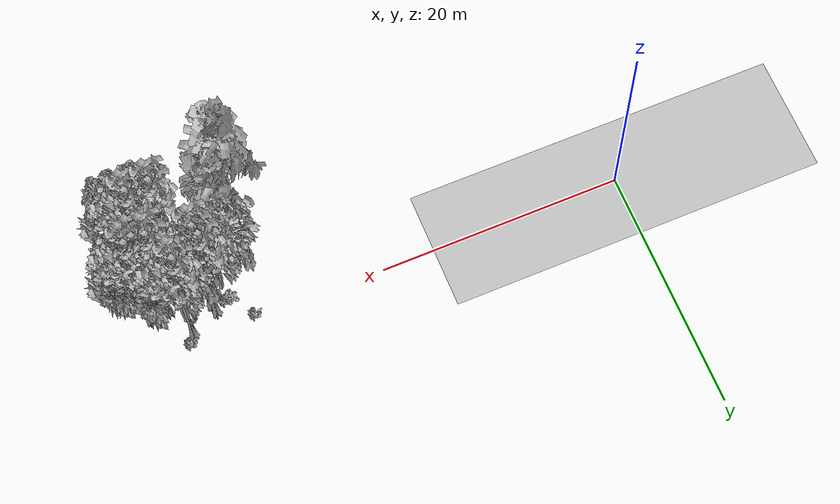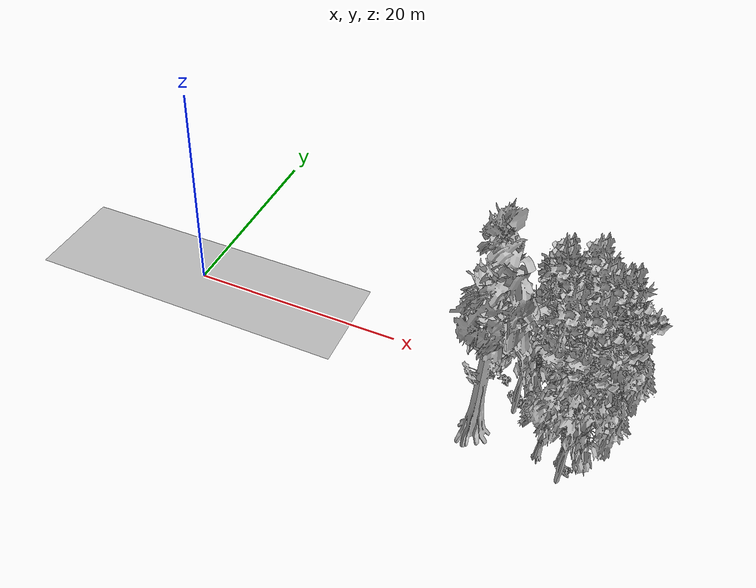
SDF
<sdf version="1.7">
 <world name="default">
  <model name="ground_plane">
   <static>1</static>
   <link name="link">
    <collision name="collision">
     <geometry><plane><normal>0 0 1</normal><size>100 100</size></plane></geometry>
     <surface><contact><ode><min_depth>0.01</min_depth><max_vel>0</max_vel></ode></contact></surface>
    </collision>
    <visual name="grass">
     <cast_shadows>0</cast_shadows>
     <geometry>
      <mesh>
       <scale>0.5814285714285714 0.18142857142857144 0.1</scale>
       <uri>file://grass_plane/meshes/grass_plane.dae</uri>
      </mesh>
     </geometry>
    </visual>
   </link>
  </model>
  <model name="Tree 17">
   <static>1</static>
   <pose>36.869466375832616 -6.88676190946172 0 1.57079 -0 0</pose>
   <link name="link">
    <collision name="collision">
     <geometry><mesh><scale>3.5 5 3.5</scale><uri>model://tree_9/meshes/tree_9.obj</uri></mesh></geometry>
    </collision>
    <visual name="visual">
     <geometry><mesh><scale>3.5 5 3.5</scale><uri>model://tree_9/meshes/tree_9.obj</uri></mesh></geometry>
    </visual>
   </link>
  </model>
  <model name="Tree 18">
   <static>1</static>
   <pose>33.241115109427554 -1.7920709924134535 0 1.57079 -0 0</pose>
   <link name="link">
    <collision name="collision">
     <geometry><mesh><scale>3.5 5 3.5</scale><uri>model://tree_9/meshes/tree_9.obj</uri></mesh></geometry>
    </collision>
    <visual name="visual">
     <geometry><mesh><scale>3.5 5 3.5</scale><uri>model://tree_9/meshes/tree_9.obj</uri></mesh></geometry>
    </visual>
   </link>
  </model>
  <model name="Tree 24">
   <static>1</static>
   <pose>37.49811744741757 -3.8843351869077143 0 1.57079 -0 0</pose>
   <link name="link">
    <collision name="collision">
     <geometry><mesh><scale>3.5 5 3.5</scale><uri>model://tree_2/meshes/tree_2.obj</uri></mesh></geometry>
    </collision>
    <visual name="visual">
     <geometry><mesh><scale>3.5 5 3.5</scale><uri>model://tree_2/meshes/tree_2.obj</uri></mesh></geometry>
    </visual>
   </link>
  </model>
  <model name="Tree 72">
   <static>1</static>
   <pose>37.98955537507058 -4.176091907959735 0 1.57079 -0 0</pose>
   <link name="link">
    <collision name="collision">
     <geometry><mesh><scale>3.5 5 3.5</scale><uri>model://tree_2/meshes/tree_2.obj</uri></mesh></geometry>
    </collision>
    <visual name="visual">
     <geometry><mesh><scale>3.5 5 3.5</scale><uri>model://tree_2/meshes/tree_2.obj</uri></mesh></geometry>
    </visual>
   </link>
  </model>
  <model name="Tree 75">
   <static>1</static>
   <pose>37.24369923588155 -4.122004755249536 0 1.57079 -0 0</pose>
   <link name="link">
    <collision name="collision">
     <geometry><mesh><scale>3.5 5 3.5</scale><uri>model://tree_2/meshes/tree_2.obj</uri></mesh></geometry>
    </collision>
    <visual name="visual">
     <geometry><mesh><scale>3.5 5 3.5</scale><uri>model://tree_2/meshes/tree_2.obj</uri></mesh></geometry>
    </visual>
   </link>
  </model>
  <model name="Tree 95">
   <static>1</static>
   <pose>35.542053565178676 -2.1017155250606674 0 1.57079 -0 0</pose>
   <link name="link">
    <collision name="collision">
     <geometry><mesh><scale>3.5 5 3.5</scale><uri>model://tree_2/meshes/tree_2.obj</uri></mesh></geometry>
    </collision>
    <visual name="visual">
     <geometry><mesh><scale>3.5 5 3.5</scale><uri>model://tree_2/meshes/tree_2.obj</uri></mesh></geometry>
    </visual>
   </link>
  </model>
  <model name="Tree 130">
   <static>1</static>
   <pose>32.08351607494211 -3.621987126037599 0 1.57079 -0 0</pose>
   <link name="link">
    <collision name="collision">
     <geometry><mesh><scale>3.5 5 3.5</scale><uri>model://tree_2/meshes/tree_2.obj</uri></mesh></geometry>
    </collision>
    <visual name="visual">
     <geometry><mesh><scale>3.5 5 3.5</scale><uri>model://tree_2/meshes/tree_2.obj</uri></mesh></geometry>
    </visual>
   </link>
  </model>
  <model name="Tree 201">
   <static>1</static>
   <pose>36.65638594957282 -3.1987302766292025 0 1.57079 -0 0</pose>
   <link name="link">
    <collision name="collision">
     <geometry><mesh><scale>3.5 5 3.5</scale><uri>model://tree_9/meshes/tree_9.obj</uri></mesh></geometry>
    </collision>
    <visual name="visual">
     <geometry><mesh><scale>3.5 5 3.5</scale><uri>model://tree_9/meshes/tree_9.obj</uri></mesh></geometry>
    </visual>
   </link>
  </model>
  <model name="Tree 211">
   <static>1</static>
   <pose>33.44236733802404 -2.5381143533422623 0 1.57079 -0 0</pose>
   <link name="link">
    <collision name="collision">
     <geometry><mesh><scale>3.5 5 3.5</scale><uri>model://tree_9/meshes/tree_9.obj</uri></mesh></geometry>
    </collision>
    <visual name="visual">
     <geometry><mesh><scale>3.5 5 3.5</scale><uri>model://tree_9/meshes/tree_9.obj</uri></mesh></geometry>
    </visual>
   </link>
  </model>
  <model name="Tree 241">
   <static>1</static>
   <pose>35.07781314462251 -6.997014632714233 0 1.57079 -0 0</pose>
   <link name="link">
    <collision name="collision">
     <geometry><mesh><scale>3.5 5 3.5</scale><uri>model://tree_9/meshes/tree_9.obj</uri></mesh></geometry>
    </collision>
    <visual name="visual">
     <geometry><mesh><scale>3.5 5 3.5</scale><uri>model://tree_9/meshes/tree_9.obj</uri></mesh></geometry>
    </visual>
   </link>
  </model>
  <model name="Tree 293">
   <static>1</static>
   <pose>37.5667509072527 -3.4223259781132427 0 1.57079 -0 0</pose>
   <link name="link">
    <collision name="collision">
     <geometry><mesh><scale>3.5 5 3.5</scale><uri>model://tree_9/meshes/tree_9.obj</uri></mesh></geometry>
    </collision>
    <visual name="visual">
     <geometry><mesh><scale>3.5 5 3.5</scale><uri>model://tree_9/meshes/tree_9.obj</uri></mesh></geometry>
    </visual>
   </link>
  </model>
  <model name="Tree 335">
   <static>1</static>
   <pose>29.607077039180197 -7.034411433433711 0 1.57079 -0 0</pose>
   <link name="link">
    <collision name="collision">
     <geometry><mesh><scale>3.5 5 3.5</scale><uri>model://tree_4/meshes/tree_4.obj</uri></mesh></geometry>
    </collision>
    <visual name="visual">
     <geometry><mesh><scale>3.5 5 3.5</scale><uri>model://tree_4/meshes/tree_4.obj</uri></mesh></geometry>
    </visual>
   </link>
  </model>
  <model name="Tree 359">
   <static>1</static>
   <pose>36.980383013283856 -8.926035281521948 0 1.57079 -0 0</pose>
   <link name="link">
    <collision name="collision">
     <geometry><mesh><scale>3.5 5 3.5</scale><uri>model://tree_2/meshes/tree_2.obj</uri></mesh></geometry>
    </collision>
    <visual name="visual">
     <geometry><mesh><scale>3.5 5 3.5</scale><uri>model://tree_2/meshes/tree_2.obj</uri></mesh></geometry>
    </visual>
   </link>
  </model>
  <model name="Tree 370">
   <static>1</static>
   <pose>35.511706727633765 -0.7406958557087169 0 1.57079 -0 0</pose>
   <link name="link">
    <collision name="collision">
     <geometry><mesh><scale>3.5 5 3.5</scale><uri>model://tree_9/meshes/tree_9.obj</uri></mesh></geometry>
    </collision>
    <visual name="visual">
     <geometry><mesh><scale>3.5 5 3.5</scale><uri>model://tree_9/meshes/tree_9.obj</uri></mesh></geometry>
    </visual>
   </link>
  </model>
  <model name="Tree 379">
   <static>1</static>
   <pose>38.2149199165754 -3.127174296813367 0 1.57079 -0 0</pose>
   <link name="link">
    <collision name="collision">
     <geometry><mesh><scale>3.5 5 3.5</scale><uri>model://tree_9/meshes/tree_9.obj</uri></mesh></geometry>
    </collision>
    <visual name="visual">
     <geometry><mesh><scale>3.5 5 3.5</scale><uri>model://tree_9/meshes/tree_9.obj</uri></mesh></geometry>
    </visual>
   </link>
  </model>
  <model name="Bush 12">
   <static>1</static>
   <pose>32.30563473232894 -2.474849436353983 0 1.57079 -0 0</pose>
   <link name="link">
    <collision name="collision">
     <geometry><mesh><scale>2 2 2</scale><uri>model://bush_2/meshes/bush_2.obj</uri></mesh></geometry>
     <surface><contact><collide_without_contact>false</collide_without_contact></contact></surface>
    </collision>
    <visual name="visual">
     <geometry><mesh><scale>2 2 2</scale><uri>model://bush_2/meshes/bush_2.obj</uri></mesh></geometry>
    </visual>
   </link>
  </model>
  <model name="Bush 24">
   <static>1</static>
   <pose>36.61102145914728 -5.044143286187216 0 1.57079 -0 0</pose>
   <link name="link">
    <collision name="collision">
     <geometry><mesh><scale>2 2 2</scale><uri>model://bush_5/meshes/bush_5.obj</uri></mesh></geometry>
     <surface><contact><collide_without_contact>false</collide_without_contact></contact></surface>
    </collision>
    <visual name="visual">
     <geometry><mesh><scale>2 2 2</scale><uri>model://bush_5/meshes/bush_5.obj</uri></mesh></geometry>
    </visual>
   </link>
  </model>
  <model name="Bush 44">
   <static>1</static>
   <pose>37.3948154737555 -7.677928943742186 0 1.57079 -0 0</pose>
   <link name="link">
    <collision name="collision">
     <geometry><mesh><scale>2 2 2</scale><uri>model://bush_2/meshes/bush_2.obj</uri></mesh></geometry>
     <surface><contact><collide_without_contact>false</collide_without_contact></contact></surface>
    </collision>
    <visual name="visual">
     <geometry><mesh><scale>2 2 2</scale><uri>model://bush_2/meshes/bush_2.obj</uri></mesh></geometry>
    </visual>
   </link>
  </model>
  <model name="Bush 59">
   <static>1</static>
   <pose>35.96064400216285 -0.11883026367923222 0 1.57079 -0 0</pose>
   <link name="link">
    <collision name="collision">
     <geometry><mesh><scale>2 2 2</scale><uri>model://bush_2/meshes/bush_2.obj</uri></mesh></geometry>
     <surface><contact><collide_without_contact>false</collide_without_contact></contact></surface>
    </collision>
    <visual name="visual">
     <geometry><mesh><scale>2 2 2</scale><uri>model://bush_2/meshes/bush_2.obj</uri></mesh></geometry>
    </visual>
   </link>
  </model>
  <model name="Bush 64">
   <static>1</static>
   <pose>30.541076990247532 -0.5296320395990186 0 1.57079 -0 0</pose>
   <link name="link">
    <collision name="collision">
     <geometry><mesh><scale>2 2 2</scale><uri>model://bush_2/meshes/bush_2.obj</uri></mesh></geometry>
     <surface><contact><collide_without_contact>false</collide_without_contact></contact></surface>
    </collision>
    <visual name="visual">
     <geometry><mesh><scale>2 2 2</scale><uri>model://bush_2/meshes/bush_2.obj</uri></mesh></geometry>
    </visual>
   </link>
  </model>
  <model name="Bush 70">
   <static>1</static>
   <pose>37.89940835811336 -5.527380429434425 0 1.57079 -0 0</pose>
   <link name="link">
    <collision name="collision">
     <geometry><mesh><scale>2 2 2</scale><uri>model://bush_1/meshes/bush_1.obj</uri></mesh></geometry>
     <surface><contact><collide_without_contact>false</collide_without_contact></contact></surface>
    </collision>
    <visual name="visual">
     <geometry><mesh><scale>2 2 2</scale><uri>model://bush_1/meshes/bush_1.obj</uri></mesh></geometry>
    </visual>
   </link>
  </model>
  <model name="Bush 328">
   <static>1</static>
   <pose>31.93054783565296 -2.3317752531615135 0 1.57079 -0 0</pose>
   <link name="link">
    <collision name="collision">
     <geometry><mesh><scale>2 2 2</scale><uri>model://bush_3/meshes/bush_3.obj</uri></mesh></geometry>
     <surface><contact><collide_without_contact>false</collide_without_contact></contact></surface>
    </collision>
    <visual name="visual">
     <geometry><mesh><scale>2 2 2</scale><uri>model://bush_3/meshes/bush_3.obj</uri></mesh></geometry>
    </visual>
   </link>
  </model>
 </world>
</sdf>
